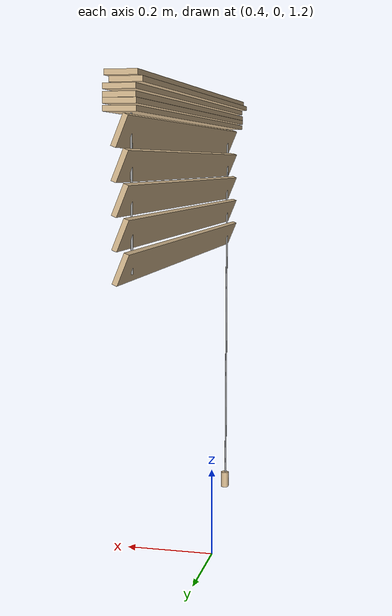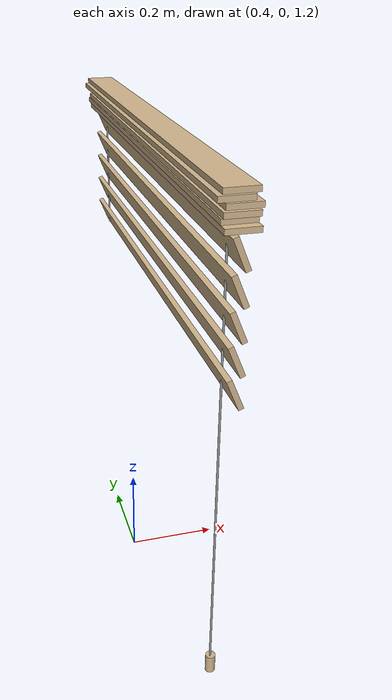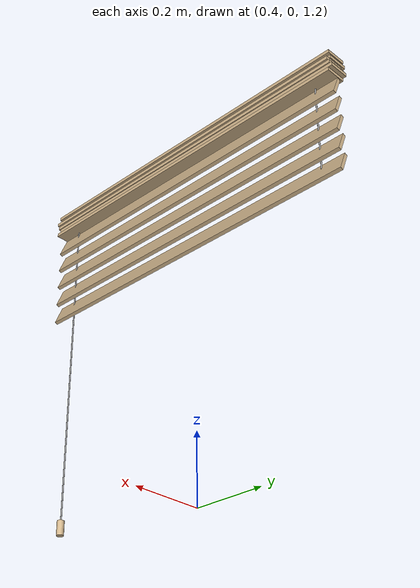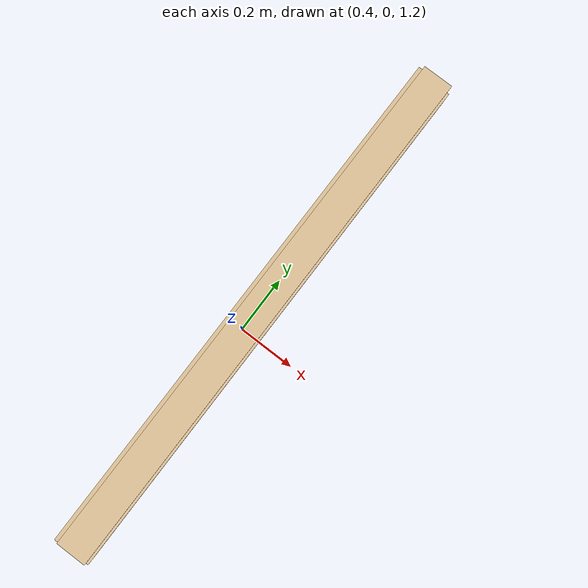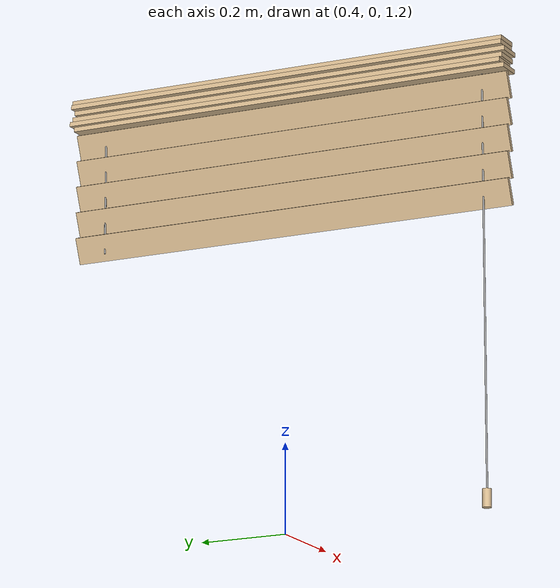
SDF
<?xml version='1.0'?>
<sdf version='1.7'>
  <model name='my_blinds'>
    <link name='link'>
      <inertial>
        <mass>1</mass>
        <inertia>
          <ixx>0.166667</ixx>
          <ixy>0</ixy>
          <ixz>0</ixz>
          <iyy>0.166667</iyy>
          <iyz>0</iyz>
          <izz>0.166667</izz>
        </inertia>
        <pose>0 0 0 0 -0 0</pose>
      </inertial>
      <self_collide>0</self_collide>
      <enable_wind>0</enable_wind>
      <kinematic>0</kinematic>
      <pose>0.455071 0.017039 0 0 -0 0</pose>
      <gravity>1</gravity>
      <visual name='visual'>
        <geometry>
          <box>
            <size>0.01 1.05 0.06</size>
          </box>
        </geometry>
        <material>
          <script>
            <name>Gazebo/Grey</name>
            <uri>file://media/materials/scripts/gazebo.material</uri>
          </script>
          <shader type='pixel'>
            <normal_map>__default__</normal_map>
          </shader>
          <ambient>0.82 0.71 0.55 1</ambient>
          <diffuse>0.82 0.71 0.55 1</diffuse>
          <specular>0.01 0.01 0.01 1</specular>
          <emissive>0 0 0 1</emissive>
        </material>
        <pose>0 0 2.187 3.14159 1.57079 3.14159</pose>
        <transparency>0</transparency>
        <cast_shadows>1</cast_shadows>
      </visual>
      <collision name='collision'>
        <laser_retro>0</laser_retro>
        <max_contacts>10</max_contacts>
        <pose>0 0 2.187 3.14159 1.57079 3.14159</pose>
        <geometry>
          <box>
            <size>0.01 1.05 0.06</size>
          </box>
        </geometry>
        <surface>
          <friction>
            <ode>
              <mu>1</mu>
              <mu2>1</mu2>
              <fdir1>0 0 0</fdir1>
              <slip1>0</slip1>
              <slip2>0</slip2>
            </ode>
            <torsional>
              <coefficient>1</coefficient>
              <patch_radius>0</patch_radius>
              <surface_radius>0</surface_radius>
              <use_patch_radius>1</use_patch_radius>
              <ode>
                <slip>0</slip>
              </ode>
            </torsional>
          </friction>
          <bounce>
            <restitution_coefficient>0</restitution_coefficient>
            <threshold>1e+06</threshold>
          </bounce>
          <contact>
            <collide_without_contact>0</collide_without_contact>
            <collide_without_contact_bitmask>1</collide_without_contact_bitmask>
            <collide_bitmask>1</collide_bitmask>
            <ode>
              <soft_cfm>0</soft_cfm>
              <soft_erp>0.2</soft_erp>
              <kp>1e+13</kp>
              <kd>1</kd>
              <max_vel>0.01</max_vel>
              <min_depth>0</min_depth>
            </ode>
            <bullet>
              <split_impulse>1</split_impulse>
              <split_impulse_penetration_threshold>-0.01</split_impulse_penetration_threshold>
              <soft_cfm>0</soft_cfm>
              <soft_erp>0.2</soft_erp>
              <kp>1e+13</kp>
              <kd>1</kd>
            </bullet>
          </contact>
        </surface>
      </collision>
    </link>
    <link name='left_rope'>
      <inertial>
        <mass>1</mass>
        <inertia>
          <ixx>0.145833</ixx>
          <ixy>0</ixy>
          <ixz>0</ixz>
          <iyy>0.145833</iyy>
          <iyz>0</iyz>
          <izz>0.125</izz>
        </inertia>
        <pose>0 0 0 0 -0 0</pose>
      </inertial>
      <pose>0.452907 0.474129 0.827292 0 -0 0</pose>
      <gravity>1</gravity>
      <self_collide>0</self_collide>
      <kinematic>0</kinematic>
      <enable_wind>0</enable_wind>
      <visual name='visual'>
        <pose>0 0 1.24 0 -0 0</pose>
        <geometry>
          <cylinder>
            <radius>0.002</radius>
            <length>0.345</length>
          </cylinder>
        </geometry>
        <material>
          <lighting>1</lighting>
          <script>
            <uri>file://media/materials/scripts/gazebo.material</uri>
            <name>Gazebo/Grey</name>
          </script>
          <shader type='pixel'>
            <normal_map>__default__</normal_map>
          </shader>
          <ambient>1 1 1 1</ambient>
          <diffuse>0.8 0.8 0.8 1</diffuse>
          <specular>0.01 0.01 0.01 1</specular>
          <emissive>0 0 0 1</emissive>
        </material>
        <transparency>0</transparency>
        <cast_shadows>1</cast_shadows>
      </visual>
      <collision name='collision'>
        <laser_retro>0</laser_retro>
        <max_contacts>10</max_contacts>
        <pose>0 0 1.24 0 -0 0</pose>
        <geometry>
          <cylinder>
            <radius>0.002</radius>
            <length>0.345</length>
          </cylinder>
        </geometry>
        <surface>
          <friction>
            <ode>
              <mu>1</mu>
              <mu2>1</mu2>
              <fdir1>0 0 0</fdir1>
              <slip1>0</slip1>
              <slip2>0</slip2>
            </ode>
            <torsional>
              <coefficient>1</coefficient>
              <patch_radius>0</patch_radius>
              <surface_radius>0</surface_radius>
              <use_patch_radius>1</use_patch_radius>
              <ode>
                <slip>0</slip>
              </ode>
            </torsional>
          </friction>
          <bounce>
            <restitution_coefficient>0</restitution_coefficient>
            <threshold>1e+06</threshold>
          </bounce>
          <contact>
            <collide_without_contact>0</collide_without_contact>
            <collide_without_contact_bitmask>1</collide_without_contact_bitmask>
            <collide_bitmask>1</collide_bitmask>
            <ode>
              <soft_cfm>0</soft_cfm>
              <soft_erp>0.2</soft_erp>
              <kp>1e+13</kp>
              <kd>1</kd>
              <max_vel>0.01</max_vel>
              <min_depth>0</min_depth>
            </ode>
            <bullet>
              <split_impulse>1</split_impulse>
              <split_impulse_penetration_threshold>-0.01</split_impulse_penetration_threshold>
              <soft_cfm>0</soft_cfm>
              <soft_erp>0.2</soft_erp>
              <kp>1e+13</kp>
              <kd>1</kd>
            </bullet>
          </contact>
        </surface>
      </collision>
    </link>
    <link name='link_1'>
      <inertial>
        <mass>1</mass>
        <inertia>
          <ixx>0.166667</ixx>
          <ixy>0</ixy>
          <ixz>0</ixz>
          <iyy>0.166667</iyy>
          <iyz>0</iyz>
          <izz>0.166667</izz>
        </inertia>
        <pose>0 0 0 0 -0 0</pose>
      </inertial>
      <self_collide>0</self_collide>
      <enable_wind>0</enable_wind>
      <kinematic>0</kinematic>
      <pose>0.455071 0.017039 0 0 -0 0</pose>
      <gravity>1</gravity>
      <visual name='visual'>
        <geometry>
          <box>
            <size>0.01 1.05 0.06</size>
          </box>
        </geometry>
        <material>
          <script>
            <name>Gazebo/Grey</name>
            <uri>file://media/materials/scripts/gazebo.material</uri>
          </script>
          <shader type='pixel'>
            <normal_map>__default__</normal_map>
          </shader>
          <ambient>0.82 0.71 0.55 1</ambient>
          <diffuse>0.82 0.71 0.55 1</diffuse>
          <specular>0.01 0.01 0.01 1</specular>
          <emissive>0 0 0 1</emissive>
        </material>
        <pose>0 0 2.15 0 -0.39 0</pose>
        <transparency>0</transparency>
        <cast_shadows>1</cast_shadows>
      </visual>
      <collision name='collision'>
        <laser_retro>0</laser_retro>
        <max_contacts>10</max_contacts>
        <pose>0 0 2.15 0 -0.39 0</pose>
        <geometry>
          <box>
            <size>0.01 1.05 0.06</size>
          </box>
        </geometry>
        <surface>
          <friction>
            <ode>
              <mu>1</mu>
              <mu2>1</mu2>
              <fdir1>0 0 0</fdir1>
              <slip1>0</slip1>
              <slip2>0</slip2>
            </ode>
            <torsional>
              <coefficient>1</coefficient>
              <patch_radius>0</patch_radius>
              <surface_radius>0</surface_radius>
              <use_patch_radius>1</use_patch_radius>
              <ode>
                <slip>0</slip>
              </ode>
            </torsional>
          </friction>
          <bounce>
            <restitution_coefficient>0</restitution_coefficient>
            <threshold>1e+06</threshold>
          </bounce>
          <contact>
            <collide_without_contact>0</collide_without_contact>
            <collide_without_contact_bitmask>1</collide_without_contact_bitmask>
            <collide_bitmask>1</collide_bitmask>
            <ode>
              <soft_cfm>0</soft_cfm>
              <soft_erp>0.2</soft_erp>
              <kp>1e+13</kp>
              <kd>1</kd>
              <max_vel>0.01</max_vel>
              <min_depth>0</min_depth>
            </ode>
            <bullet>
              <split_impulse>1</split_impulse>
              <split_impulse_penetration_threshold>-0.01</split_impulse_penetration_threshold>
              <soft_cfm>0</soft_cfm>
              <soft_erp>0.2</soft_erp>
              <kp>1e+13</kp>
              <kd>1</kd>
            </bullet>
          </contact>
        </surface>
      </collision>
    </link>
    <link name='link_1_0'>
      <inertial>
        <mass>1</mass>
        <inertia>
          <ixx>0.145833</ixx>
          <ixy>0</ixy>
          <ixz>0</ixz>
          <iyy>0.145833</iyy>
          <iyz>0</iyz>
          <izz>0.125</izz>
        </inertia>
        <pose>0 0 0 0 -0 0</pose>
      </inertial>
      <pose>0.454407 -0.443789 1.24533 0 -0 0</pose>
      <gravity>1</gravity>
      <self_collide>0</self_collide>
      <kinematic>0</kinematic>
      <enable_wind>0</enable_wind>
      <visual name='visual'>
        <pose>0 0 0 0 -0 0</pose>
        <geometry>
          <cylinder>
            <radius>0.01</radius>
            <length>0.04</length>
          </cylinder>
        </geometry>
        <material>
          <lighting>1</lighting>
          <script>
            <uri>file://media/materials/scripts/gazebo.material</uri>
            <name>Gazebo/Grey</name>
          </script>
          <shader type='pixel'>
            <normal_map>__default__</normal_map>
          </shader>
          <ambient>0.82 0.71 0.55 1</ambient>
          <diffuse>0.82 0.71 0.55 1</diffuse>
          <specular>0.01 0.01 0.01 1</specular>
          <emissive>0 0 0 1</emissive>
        </material>
        <transparency>0</transparency>
        <cast_shadows>1</cast_shadows>
      </visual>
      <collision name='collision'>
        <laser_retro>0</laser_retro>
        <max_contacts>10</max_contacts>
        <pose>0 0 0 0 -0 0</pose>
        <geometry>
          <cylinder>
            <radius>0.01</radius>
            <length>0.04</length>
          </cylinder>
        </geometry>
        <surface>
          <friction>
            <ode>
              <mu>1</mu>
              <mu2>1</mu2>
              <fdir1>0 0 0</fdir1>
              <slip1>0</slip1>
              <slip2>0</slip2>
            </ode>
            <torsional>
              <coefficient>1</coefficient>
              <patch_radius>0</patch_radius>
              <surface_radius>0</surface_radius>
              <use_patch_radius>1</use_patch_radius>
              <ode>
                <slip>0</slip>
              </ode>
            </torsional>
          </friction>
          <bounce>
            <restitution_coefficient>0</restitution_coefficient>
            <threshold>1e+06</threshold>
          </bounce>
          <contact>
            <collide_without_contact>0</collide_without_contact>
            <collide_without_contact_bitmask>1</collide_without_contact_bitmask>
            <collide_bitmask>1</collide_bitmask>
            <ode>
              <soft_cfm>0</soft_cfm>
              <soft_erp>0.2</soft_erp>
              <kp>1e+13</kp>
              <kd>1</kd>
              <max_vel>0.01</max_vel>
              <min_depth>0</min_depth>
            </ode>
            <bullet>
              <split_impulse>1</split_impulse>
              <split_impulse_penetration_threshold>-0.01</split_impulse_penetration_threshold>
              <soft_cfm>0</soft_cfm>
              <soft_erp>0.2</soft_erp>
              <kp>1e+13</kp>
              <kd>1</kd>
            </bullet>
          </contact>
        </surface>
      </collision>
    </link>
    <link name='link_2'>
      <inertial>
        <mass>1</mass>
        <inertia>
          <ixx>0.166667</ixx>
          <ixy>0</ixy>
          <ixz>0</ixz>
          <iyy>0.166667</iyy>
          <iyz>0</iyz>
          <izz>0.166667</izz>
        </inertia>
        <pose>0 0 0 0 -0 0</pose>
      </inertial>
      <self_collide>0</self_collide>
      <enable_wind>0</enable_wind>
      <kinematic>0</kinematic>
      <pose>0.455071 0.017039 0 0 -0 0</pose>
      <gravity>1</gravity>
      <visual name='visual'>
        <geometry>
          <box>
            <size>0.01 1.05 0.06</size>
          </box>
        </geometry>
        <material>
          <script>
            <name>Gazebo/Grey</name>
            <uri>file://media/materials/scripts/gazebo.material</uri>
          </script>
          <shader type='pixel'>
            <normal_map>__default__</normal_map>
          </shader>
          <ambient>0.82 0.71 0.55 1</ambient>
          <diffuse>0.82 0.71 0.55 1</diffuse>
          <specular>0.01 0.01 0.01 1</specular>
          <emissive>0 0 0 1</emissive>
        </material>
        <pose>0 0 2.09 0 -0.39 0</pose>
        <transparency>0</transparency>
        <cast_shadows>1</cast_shadows>
      </visual>
      <collision name='collision'>
        <laser_retro>0</laser_retro>
        <max_contacts>10</max_contacts>
        <pose>0 0 2.09 0 -0.39 0</pose>
        <geometry>
          <box>
            <size>0.01 1.05 0.06</size>
          </box>
        </geometry>
        <surface>
          <friction>
            <ode>
              <mu>1</mu>
              <mu2>1</mu2>
              <fdir1>0 0 0</fdir1>
              <slip1>0</slip1>
              <slip2>0</slip2>
            </ode>
            <torsional>
              <coefficient>1</coefficient>
              <patch_radius>0</patch_radius>
              <surface_radius>0</surface_radius>
              <use_patch_radius>1</use_patch_radius>
              <ode>
                <slip>0</slip>
              </ode>
            </torsional>
          </friction>
          <bounce>
            <restitution_coefficient>0</restitution_coefficient>
            <threshold>1e+06</threshold>
          </bounce>
          <contact>
            <collide_without_contact>0</collide_without_contact>
            <collide_without_contact_bitmask>1</collide_without_contact_bitmask>
            <collide_bitmask>1</collide_bitmask>
            <ode>
              <soft_cfm>0</soft_cfm>
              <soft_erp>0.2</soft_erp>
              <kp>1e+13</kp>
              <kd>1</kd>
              <max_vel>0.01</max_vel>
              <min_depth>0</min_depth>
            </ode>
            <bullet>
              <split_impulse>1</split_impulse>
              <split_impulse_penetration_threshold>-0.01</split_impulse_penetration_threshold>
              <soft_cfm>0</soft_cfm>
              <soft_erp>0.2</soft_erp>
              <kp>1e+13</kp>
              <kd>1</kd>
            </bullet>
          </contact>
        </surface>
      </collision>
    </link>
    <link name='link_3'>
      <inertial>
        <mass>1</mass>
        <inertia>
          <ixx>0.166667</ixx>
          <ixy>0</ixy>
          <ixz>0</ixz>
          <iyy>0.166667</iyy>
          <iyz>0</iyz>
          <izz>0.166667</izz>
        </inertia>
        <pose>0 0 0 0 -0 0</pose>
      </inertial>
      <self_collide>0</self_collide>
      <enable_wind>0</enable_wind>
      <kinematic>0</kinematic>
      <pose>0.455071 0.017039 0 0 -0 0</pose>
      <gravity>1</gravity>
      <visual name='visual'>
        <geometry>
          <box>
            <size>0.01 1.05 0.06</size>
          </box>
        </geometry>
        <material>
          <script>
            <name>Gazebo/Grey</name>
            <uri>file://media/materials/scripts/gazebo.material</uri>
          </script>
          <shader type='pixel'>
            <normal_map>__default__</normal_map>
          </shader>
          <ambient>0.82 0.71 0.55 1</ambient>
          <diffuse>0.82 0.71 0.55 1</diffuse>
          <specular>0.01 0.01 0.01 1</specular>
          <emissive>0 0 0 1</emissive>
        </material>
        <pose>0 0 2.03 0 -0.39 0</pose>
        <transparency>0</transparency>
        <cast_shadows>1</cast_shadows>
      </visual>
      <collision name='collision'>
        <laser_retro>0</laser_retro>
        <max_contacts>10</max_contacts>
        <pose>0 0 2.03 0 -0.39 0</pose>
        <geometry>
          <box>
            <size>0.01 1.05 0.06</size>
          </box>
        </geometry>
        <surface>
          <friction>
            <ode>
              <mu>1</mu>
              <mu2>1</mu2>
              <fdir1>0 0 0</fdir1>
              <slip1>0</slip1>
              <slip2>0</slip2>
            </ode>
            <torsional>
              <coefficient>1</coefficient>
              <patch_radius>0</patch_radius>
              <surface_radius>0</surface_radius>
              <use_patch_radius>1</use_patch_radius>
              <ode>
                <slip>0</slip>
              </ode>
            </torsional>
          </friction>
          <bounce>
            <restitution_coefficient>0</restitution_coefficient>
            <threshold>1e+06</threshold>
          </bounce>
          <contact>
            <collide_without_contact>0</collide_without_contact>
            <collide_without_contact_bitmask>1</collide_without_contact_bitmask>
            <collide_bitmask>1</collide_bitmask>
            <ode>
              <soft_cfm>0</soft_cfm>
              <soft_erp>0.2</soft_erp>
              <kp>1e+13</kp>
              <kd>1</kd>
              <max_vel>0.01</max_vel>
              <min_depth>0</min_depth>
            </ode>
            <bullet>
              <split_impulse>1</split_impulse>
              <split_impulse_penetration_threshold>-0.01</split_impulse_penetration_threshold>
              <soft_cfm>0</soft_cfm>
              <soft_erp>0.2</soft_erp>
              <kp>1e+13</kp>
              <kd>1</kd>
            </bullet>
          </contact>
        </surface>
      </collision>
    </link>
    <link name='link_4'>
      <inertial>
        <mass>1</mass>
        <inertia>
          <ixx>0.166667</ixx>
          <ixy>0</ixy>
          <ixz>0</ixz>
          <iyy>0.166667</iyy>
          <iyz>0</iyz>
          <izz>0.166667</izz>
        </inertia>
        <pose>0 0 0 0 -0 0</pose>
      </inertial>
      <self_collide>0</self_collide>
      <enable_wind>0</enable_wind>
      <kinematic>0</kinematic>
      <pose>0.455071 0.017039 0 0 -0 0</pose>
      <gravity>1</gravity>
      <visual name='visual'>
        <geometry>
          <box>
            <size>0.01 1.05 0.06</size>
          </box>
        </geometry>
        <material>
          <script>
            <name>Gazebo/Grey</name>
            <uri>file://media/materials/scripts/gazebo.material</uri>
          </script>
          <shader type='pixel'>
            <normal_map>__default__</normal_map>
          </shader>
          <ambient>0.82 0.71 0.55 1</ambient>
          <diffuse>0.82 0.71 0.55 1</diffuse>
          <specular>0.01 0.01 0.01 1</specular>
          <emissive>0 0 0 1</emissive>
        </material>
        <pose>0 0 1.97 0 -0.39 0</pose>
        <transparency>0</transparency>
        <cast_shadows>1</cast_shadows>
      </visual>
      <collision name='collision'>
        <laser_retro>0</laser_retro>
        <max_contacts>10</max_contacts>
        <pose>0 0 1.97 0 -0.39 0</pose>
        <geometry>
          <box>
            <size>0.01 1.05 0.06</size>
          </box>
        </geometry>
        <surface>
          <friction>
            <ode>
              <mu>1</mu>
              <mu2>1</mu2>
              <fdir1>0 0 0</fdir1>
              <slip1>0</slip1>
              <slip2>0</slip2>
            </ode>
            <torsional>
              <coefficient>1</coefficient>
              <patch_radius>0</patch_radius>
              <surface_radius>0</surface_radius>
              <use_patch_radius>1</use_patch_radius>
              <ode>
                <slip>0</slip>
              </ode>
            </torsional>
          </friction>
          <bounce>
            <restitution_coefficient>0</restitution_coefficient>
            <threshold>1e+06</threshold>
          </bounce>
          <contact>
            <collide_without_contact>0</collide_without_contact>
            <collide_without_contact_bitmask>1</collide_without_contact_bitmask>
            <collide_bitmask>1</collide_bitmask>
            <ode>
              <soft_cfm>0</soft_cfm>
              <soft_erp>0.2</soft_erp>
              <kp>1e+13</kp>
              <kd>1</kd>
              <max_vel>0.01</max_vel>
              <min_depth>0</min_depth>
            </ode>
            <bullet>
              <split_impulse>1</split_impulse>
              <split_impulse_penetration_threshold>-0.01</split_impulse_penetration_threshold>
              <soft_cfm>0</soft_cfm>
              <soft_erp>0.2</soft_erp>
              <kp>1e+13</kp>
              <kd>1</kd>
            </bullet>
          </contact>
        </surface>
      </collision>
    </link>
    <link name='link_5'>
      <inertial>
        <mass>1</mass>
        <inertia>
          <ixx>0.166667</ixx>
          <ixy>0</ixy>
          <ixz>0</ixz>
          <iyy>0.166667</iyy>
          <iyz>0</iyz>
          <izz>0.166667</izz>
        </inertia>
        <pose>0 0 0 0 -0 0</pose>
      </inertial>
      <self_collide>0</self_collide>
      <enable_wind>0</enable_wind>
      <kinematic>0</kinematic>
      <pose>0.455071 0.017039 0 0 -0 0</pose>
      <gravity>1</gravity>
      <visual name='visual'>
        <geometry>
          <box>
            <size>0.01 1.05 0.06</size>
          </box>
        </geometry>
        <material>
          <script>
            <name>Gazebo/Grey</name>
            <uri>file://media/materials/scripts/gazebo.material</uri>
          </script>
          <shader type='pixel'>
            <normal_map>__default__</normal_map>
          </shader>
          <ambient>0.82 0.71 0.55 1</ambient>
          <diffuse>0.82 0.71 0.55 1</diffuse>
          <specular>0.01 0.01 0.01 1</specular>
          <emissive>0 0 0 1</emissive>
        </material>
        <pose>0 0 1.91 0 -0.39 0</pose>
        <transparency>0</transparency>
        <cast_shadows>1</cast_shadows>
      </visual>
      <collision name='collision'>
        <laser_retro>0</laser_retro>
        <max_contacts>10</max_contacts>
        <pose>0 0 1.91 0 -0.39 0</pose>
        <geometry>
          <box>
            <size>0.01 1.05 0.06</size>
          </box>
        </geometry>
        <surface>
          <friction>
            <ode>
              <mu>1</mu>
              <mu2>1</mu2>
              <fdir1>0 0 0</fdir1>
              <slip1>0</slip1>
              <slip2>0</slip2>
            </ode>
            <torsional>
              <coefficient>1</coefficient>
              <patch_radius>0</patch_radius>
              <surface_radius>0</surface_radius>
              <use_patch_radius>1</use_patch_radius>
              <ode>
                <slip>0</slip>
              </ode>
            </torsional>
          </friction>
          <bounce>
            <restitution_coefficient>0</restitution_coefficient>
            <threshold>1e+06</threshold>
          </bounce>
          <contact>
            <collide_without_contact>0</collide_without_contact>
            <collide_without_contact_bitmask>1</collide_without_contact_bitmask>
            <collide_bitmask>1</collide_bitmask>
            <ode>
              <soft_cfm>0</soft_cfm>
              <soft_erp>0.2</soft_erp>
              <kp>1e+13</kp>
              <kd>1</kd>
              <max_vel>0.01</max_vel>
              <min_depth>0</min_depth>
            </ode>
            <bullet>
              <split_impulse>1</split_impulse>
              <split_impulse_penetration_threshold>-0.01</split_impulse_penetration_threshold>
              <soft_cfm>0</soft_cfm>
              <soft_erp>0.2</soft_erp>
              <kp>1e+13</kp>
              <kd>1</kd>
            </bullet>
          </contact>
        </surface>
      </collision>
    </link>
    <link name='link_clone'>
      <inertial>
        <mass>1</mass>
        <inertia>
          <ixx>0.166667</ixx>
          <ixy>0</ixy>
          <ixz>0</ixz>
          <iyy>0.166667</iyy>
          <iyz>0</iyz>
          <izz>0.166667</izz>
        </inertia>
        <pose>0 0 0 0 -0 0</pose>
      </inertial>
      <self_collide>0</self_collide>
      <enable_wind>0</enable_wind>
      <kinematic>0</kinematic>
      <pose>0.452148 0.026043 0.012868 0 -0 0</pose>
      <gravity>1</gravity>
      <visual name='visual'>
        <geometry>
          <box>
            <size>0.01 1.05 0.06</size>
          </box>
        </geometry>
        <material>
          <script>
            <name>Gazebo/Grey</name>
            <uri>file://media/materials/scripts/gazebo.material</uri>
          </script>
          <shader type='pixel'>
            <normal_map>__default__</normal_map>
          </shader>
          <ambient>0.82 0.71 0.55 1</ambient>
          <diffuse>0.82 0.71 0.55 1</diffuse>
          <specular>0.01 0.01 0.01 1</specular>
          <emissive>0 0 0 1</emissive>
        </material>
        <pose>0 0 2.187 3.14159 1.57079 3.14159</pose>
        <transparency>0</transparency>
        <cast_shadows>1</cast_shadows>
      </visual>
      <collision name='collision'>
        <laser_retro>0</laser_retro>
        <max_contacts>10</max_contacts>
        <pose>0 0 2.187 3.14159 1.57079 3.14159</pose>
        <geometry>
          <box>
            <size>0.01 1.05 0.06</size>
          </box>
        </geometry>
        <surface>
          <friction>
            <ode>
              <mu>1</mu>
              <mu2>1</mu2>
              <fdir1>0 0 0</fdir1>
              <slip1>0</slip1>
              <slip2>0</slip2>
            </ode>
            <torsional>
              <coefficient>1</coefficient>
              <patch_radius>0</patch_radius>
              <surface_radius>0</surface_radius>
              <use_patch_radius>1</use_patch_radius>
              <ode>
                <slip>0</slip>
              </ode>
            </torsional>
          </friction>
          <bounce>
            <restitution_coefficient>0</restitution_coefficient>
            <threshold>1e+06</threshold>
          </bounce>
          <contact>
            <collide_without_contact>0</collide_without_contact>
            <collide_without_contact_bitmask>1</collide_without_contact_bitmask>
            <collide_bitmask>1</collide_bitmask>
            <ode>
              <soft_cfm>0</soft_cfm>
              <soft_erp>0.2</soft_erp>
              <kp>1e+13</kp>
              <kd>1</kd>
              <max_vel>0.01</max_vel>
              <min_depth>0</min_depth>
            </ode>
            <bullet>
              <split_impulse>1</split_impulse>
              <split_impulse_penetration_threshold>-0.01</split_impulse_penetration_threshold>
              <soft_cfm>0</soft_cfm>
              <soft_erp>0.2</soft_erp>
              <kp>1e+13</kp>
              <kd>1</kd>
            </bullet>
          </contact>
        </surface>
      </collision>
    </link>
    <link name='link_clone_clone'>
      <inertial>
        <mass>1</mass>
        <inertia>
          <ixx>0.166667</ixx>
          <ixy>0</ixy>
          <ixz>0</ixz>
          <iyy>0.166667</iyy>
          <iyz>0</iyz>
          <izz>0.166667</izz>
        </inertia>
        <pose>0 0 0 0 -0 0</pose>
      </inertial>
      <self_collide>0</self_collide>
      <enable_wind>0</enable_wind>
      <kinematic>0</kinematic>
      <pose>0.454154 0.020509 0.023586 0 -0 0</pose>
      <gravity>1</gravity>
      <visual name='visual'>
        <geometry>
          <box>
            <size>0.01 1.05 0.06</size>
          </box>
        </geometry>
        <material>
          <script>
            <name>Gazebo/Grey</name>
            <uri>file://media/materials/scripts/gazebo.material</uri>
          </script>
          <shader type='pixel'>
            <normal_map>__default__</normal_map>
          </shader>
          <ambient>0.82 0.71 0.55 1</ambient>
          <diffuse>0.82 0.71 0.55 1</diffuse>
          <specular>0.01 0.01 0.01 1</specular>
          <emissive>0 0 0 1</emissive>
        </material>
        <pose>0 0 2.187 3.14159 1.57079 3.14159</pose>
        <transparency>0</transparency>
        <cast_shadows>1</cast_shadows>
      </visual>
      <collision name='collision'>
        <laser_retro>0</laser_retro>
        <max_contacts>10</max_contacts>
        <pose>0 0 2.187 3.14159 1.57079 3.14159</pose>
        <geometry>
          <box>
            <size>0.01 1.05 0.06</size>
          </box>
        </geometry>
        <surface>
          <friction>
            <ode>
              <mu>1</mu>
              <mu2>1</mu2>
              <fdir1>0 0 0</fdir1>
              <slip1>0</slip1>
              <slip2>0</slip2>
            </ode>
            <torsional>
              <coefficient>1</coefficient>
              <patch_radius>0</patch_radius>
              <surface_radius>0</surface_radius>
              <use_patch_radius>1</use_patch_radius>
              <ode>
                <slip>0</slip>
              </ode>
            </torsional>
          </friction>
          <bounce>
            <restitution_coefficient>0</restitution_coefficient>
            <threshold>1e+06</threshold>
          </bounce>
          <contact>
            <collide_without_contact>0</collide_without_contact>
            <collide_without_contact_bitmask>1</collide_without_contact_bitmask>
            <collide_bitmask>1</collide_bitmask>
            <ode>
              <soft_cfm>0</soft_cfm>
              <soft_erp>0.2</soft_erp>
              <kp>1e+13</kp>
              <kd>1</kd>
              <max_vel>0.01</max_vel>
              <min_depth>0</min_depth>
            </ode>
            <bullet>
              <split_impulse>1</split_impulse>
              <split_impulse_penetration_threshold>-0.01</split_impulse_penetration_threshold>
              <soft_cfm>0</soft_cfm>
              <soft_erp>0.2</soft_erp>
              <kp>1e+13</kp>
              <kd>1</kd>
            </bullet>
          </contact>
        </surface>
      </collision>
    </link>
    <link name='link_clone_clone_clone'>
      <inertial>
        <mass>1</mass>
        <inertia>
          <ixx>0.166667</ixx>
          <ixy>0</ixy>
          <ixz>0</ixz>
          <iyy>0.166667</iyy>
          <iyz>0</iyz>
          <izz>0.166667</izz>
        </inertia>
        <pose>0 0 0 0 -0 0</pose>
      </inertial>
      <self_collide>0</self_collide>
      <enable_wind>0</enable_wind>
      <kinematic>0</kinematic>
      <pose>0.455421 0.015468 0.038005 0 -0 0</pose>
      <gravity>1</gravity>
      <visual name='visual'>
        <geometry>
          <box>
            <size>0.01 1.05 0.06</size>
          </box>
        </geometry>
        <material>
          <script>
            <name>Gazebo/Grey</name>
            <uri>file://media/materials/scripts/gazebo.material</uri>
          </script>
          <shader type='pixel'>
            <normal_map>__default__</normal_map>
          </shader>
          <ambient>0.82 0.71 0.55 1</ambient>
          <diffuse>0.82 0.71 0.55 1</diffuse>
          <specular>0.01 0.01 0.01 1</specular>
          <emissive>0 0 0 1</emissive>
        </material>
        <pose>0 0 2.187 3.14159 1.57079 3.14159</pose>
        <transparency>0</transparency>
        <cast_shadows>1</cast_shadows>
      </visual>
      <collision name='collision'>
        <laser_retro>0</laser_retro>
        <max_contacts>10</max_contacts>
        <pose>0 0 2.187 3.14159 1.57079 3.14159</pose>
        <geometry>
          <box>
            <size>0.01 1.05 0.06</size>
          </box>
        </geometry>
        <surface>
          <friction>
            <ode>
              <mu>1</mu>
              <mu2>1</mu2>
              <fdir1>0 0 0</fdir1>
              <slip1>0</slip1>
              <slip2>0</slip2>
            </ode>
            <torsional>
              <coefficient>1</coefficient>
              <patch_radius>0</patch_radius>
              <surface_radius>0</surface_radius>
              <use_patch_radius>1</use_patch_radius>
              <ode>
                <slip>0</slip>
              </ode>
            </torsional>
          </friction>
          <bounce>
            <restitution_coefficient>0</restitution_coefficient>
            <threshold>1e+06</threshold>
          </bounce>
          <contact>
            <collide_without_contact>0</collide_without_contact>
            <collide_without_contact_bitmask>1</collide_without_contact_bitmask>
            <collide_bitmask>1</collide_bitmask>
            <ode>
              <soft_cfm>0</soft_cfm>
              <soft_erp>0.2</soft_erp>
              <kp>1e+13</kp>
              <kd>1</kd>
              <max_vel>0.01</max_vel>
              <min_depth>0</min_depth>
            </ode>
            <bullet>
              <split_impulse>1</split_impulse>
              <split_impulse_penetration_threshold>-0.01</split_impulse_penetration_threshold>
              <soft_cfm>0</soft_cfm>
              <soft_erp>0.2</soft_erp>
              <kp>1e+13</kp>
              <kd>1</kd>
            </bullet>
          </contact>
        </surface>
      </collision>
    </link>
    <link name='link_clone_clone_clone_clone'>
      <inertial>
        <mass>1</mass>
        <inertia>
          <ixx>0.166667</ixx>
          <ixy>0</ixy>
          <ixz>0</ixz>
          <iyy>0.166667</iyy>
          <iyz>0</iyz>
          <izz>0.166667</izz>
        </inertia>
        <pose>0 0 0 0 -0 0</pose>
      </inertial>
      <self_collide>0</self_collide>
      <enable_wind>0</enable_wind>
      <kinematic>0</kinematic>
      <pose>0.442992 0.017715 0.049194 0 -0 0</pose>
      <gravity>1</gravity>
      <visual name='visual'>
        <geometry>
          <box>
            <size>0.01 1.05 0.06</size>
          </box>
        </geometry>
        <material>
          <script>
            <name>Gazebo/Grey</name>
            <uri>file://media/materials/scripts/gazebo.material</uri>
          </script>
          <shader type='pixel'>
            <normal_map>__default__</normal_map>
          </shader>
          <ambient>0.82 0.71 0.55 1</ambient>
          <diffuse>0.82 0.71 0.55 1</diffuse>
          <specular>0.01 0.01 0.01 1</specular>
          <emissive>0 0 0 1</emissive>
        </material>
        <pose>0 0 2.187 3.14159 1.57079 3.14159</pose>
        <transparency>0</transparency>
        <cast_shadows>1</cast_shadows>
      </visual>
      <collision name='collision'>
        <laser_retro>0</laser_retro>
        <max_contacts>10</max_contacts>
        <pose>0 0 2.187 3.14159 1.57079 3.14159</pose>
        <geometry>
          <box>
            <size>0.01 1.05 0.06</size>
          </box>
        </geometry>
        <surface>
          <friction>
            <ode>
              <mu>1</mu>
              <mu2>1</mu2>
              <fdir1>0 0 0</fdir1>
              <slip1>0</slip1>
              <slip2>0</slip2>
            </ode>
            <torsional>
              <coefficient>1</coefficient>
              <patch_radius>0</patch_radius>
              <surface_radius>0</surface_radius>
              <use_patch_radius>1</use_patch_radius>
              <ode>
                <slip>0</slip>
              </ode>
            </torsional>
          </friction>
          <bounce>
            <restitution_coefficient>0</restitution_coefficient>
            <threshold>1e+06</threshold>
          </bounce>
          <contact>
            <collide_without_contact>0</collide_without_contact>
            <collide_without_contact_bitmask>1</collide_without_contact_bitmask>
            <collide_bitmask>1</collide_bitmask>
            <ode>
              <soft_cfm>0</soft_cfm>
              <soft_erp>0.2</soft_erp>
              <kp>1e+13</kp>
              <kd>1</kd>
              <max_vel>0.01</max_vel>
              <min_depth>0</min_depth>
            </ode>
            <bullet>
              <split_impulse>1</split_impulse>
              <split_impulse_penetration_threshold>-0.01</split_impulse_penetration_threshold>
              <soft_cfm>0</soft_cfm>
              <soft_erp>0.2</soft_erp>
              <kp>1e+13</kp>
              <kd>1</kd>
            </bullet>
          </contact>
        </surface>
      </collision>
    </link>
    <link name='link_clone_clone_clone_clone_clone'>
      <inertial>
        <mass>1</mass>
        <inertia>
          <ixx>0.166667</ixx>
          <ixy>0</ixy>
          <ixz>0</ixz>
          <iyy>0.166667</iyy>
          <iyz>0</iyz>
          <izz>0.166667</izz>
        </inertia>
        <pose>0 0 0 0 -0 0</pose>
      </inertial>
      <self_collide>0</self_collide>
      <enable_wind>0</enable_wind>
      <kinematic>0</kinematic>
      <pose>0.451065 0.019395 0.060777 0 -0 0</pose>
      <gravity>1</gravity>
      <visual name='visual'>
        <geometry>
          <box>
            <size>0.01 1.05 0.06</size>
          </box>
        </geometry>
        <material>
          <script>
            <name>Gazebo/Grey</name>
            <uri>file://media/materials/scripts/gazebo.material</uri>
          </script>
          <shader type='pixel'>
            <normal_map>__default__</normal_map>
          </shader>
          <ambient>0.82 0.71 0.55 1</ambient>
          <diffuse>0.82 0.71 0.55 1</diffuse>
          <specular>0.01 0.01 0.01 1</specular>
          <emissive>0 0 0 1</emissive>
        </material>
        <pose>0 0 2.187 3.14159 1.57079 3.14159</pose>
        <transparency>0</transparency>
        <cast_shadows>1</cast_shadows>
      </visual>
      <collision name='collision'>
        <laser_retro>0</laser_retro>
        <max_contacts>10</max_contacts>
        <pose>0 0 2.187 3.14159 1.57079 3.14159</pose>
        <geometry>
          <box>
            <size>0.01 1.05 0.06</size>
          </box>
        </geometry>
        <surface>
          <friction>
            <ode>
              <mu>1</mu>
              <mu2>1</mu2>
              <fdir1>0 0 0</fdir1>
              <slip1>0</slip1>
              <slip2>0</slip2>
            </ode>
            <torsional>
              <coefficient>1</coefficient>
              <patch_radius>0</patch_radius>
              <surface_radius>0</surface_radius>
              <use_patch_radius>1</use_patch_radius>
              <ode>
                <slip>0</slip>
              </ode>
            </torsional>
          </friction>
          <bounce>
            <restitution_coefficient>0</restitution_coefficient>
            <threshold>1e+06</threshold>
          </bounce>
          <contact>
            <collide_without_contact>0</collide_without_contact>
            <collide_without_contact_bitmask>1</collide_without_contact_bitmask>
            <collide_bitmask>1</collide_bitmask>
            <ode>
              <soft_cfm>0</soft_cfm>
              <soft_erp>0.2</soft_erp>
              <kp>1e+13</kp>
              <kd>1</kd>
              <max_vel>0.01</max_vel>
              <min_depth>0</min_depth>
            </ode>
            <bullet>
              <split_impulse>1</split_impulse>
              <split_impulse_penetration_threshold>-0.01</split_impulse_penetration_threshold>
              <soft_cfm>0</soft_cfm>
              <soft_erp>0.2</soft_erp>
              <kp>1e+13</kp>
              <kd>1</kd>
            </bullet>
          </contact>
        </surface>
      </collision>
    </link>
    <link name='right_rope'>
      <inertial>
        <mass>1</mass>
        <inertia>
          <ixx>0.145833</ixx>
          <ixy>0</ixy>
          <ixz>0</ixz>
          <iyy>0.145833</iyy>
          <iyz>0</iyz>
          <izz>0.125</izz>
        </inertia>
        <pose>0 0 0 0 -0 0</pose>
      </inertial>
      <pose>0.452907 -0.445289 0.5 0 -0 0</pose>
      <gravity>1</gravity>
      <self_collide>0</self_collide>
      <kinematic>0</kinematic>
      <enable_wind>0</enable_wind>
      <visual name='visual'>
        <pose>0 0 1.24 0 -0 0</pose>
        <geometry>
          <cylinder>
            <radius>0.002</radius>
            <length>1</length>
          </cylinder>
        </geometry>
        <material>
          <lighting>1</lighting>
          <script>
            <uri>file://media/materials/scripts/gazebo.material</uri>
            <name>Gazebo/Grey</name>
          </script>
          <shader type='pixel'>
            <normal_map>__default__</normal_map>
          </shader>
          <ambient>1 1 1 1</ambient>
          <diffuse>0.8 0.8 0.8 1</diffuse>
          <specular>0.01 0.01 0.01 1</specular>
          <emissive>0 0 0 1</emissive>
        </material>
        <transparency>0</transparency>
        <cast_shadows>1</cast_shadows>
      </visual>
      <collision name='collision'>
        <laser_retro>0</laser_retro>
        <max_contacts>10</max_contacts>
        <pose>0 0 1.24 0 -0 0</pose>
        <geometry>
          <cylinder>
            <radius>0.002</radius>
            <length>1</length>
          </cylinder>
        </geometry>
        <surface>
          <friction>
            <ode>
              <mu>1</mu>
              <mu2>1</mu2>
              <fdir1>0 0 0</fdir1>
              <slip1>0</slip1>
              <slip2>0</slip2>
            </ode>
            <torsional>
              <coefficient>1</coefficient>
              <patch_radius>0</patch_radius>
              <surface_radius>0</surface_radius>
              <use_patch_radius>1</use_patch_radius>
              <ode>
                <slip>0</slip>
              </ode>
            </torsional>
          </friction>
          <bounce>
            <restitution_coefficient>0</restitution_coefficient>
            <threshold>1e+06</threshold>
          </bounce>
          <contact>
            <collide_without_contact>0</collide_without_contact>
            <collide_without_contact_bitmask>1</collide_without_contact_bitmask>
            <collide_bitmask>1</collide_bitmask>
            <ode>
              <soft_cfm>0</soft_cfm>
              <soft_erp>0.2</soft_erp>
              <kp>1e+13</kp>
              <kd>1</kd>
              <max_vel>0.01</max_vel>
              <min_depth>0</min_depth>
            </ode>
            <bullet>
              <split_impulse>1</split_impulse>
              <split_impulse_penetration_threshold>-0.01</split_impulse_penetration_threshold>
              <soft_cfm>0</soft_cfm>
              <soft_erp>0.2</soft_erp>
              <kp>1e+13</kp>
              <kd>1</kd>
            </bullet>
          </contact>
        </surface>
      </collision>
    </link>
    <static>1</static>
    <allow_auto_disable>1</allow_auto_disable>
  </model>
</sdf>
